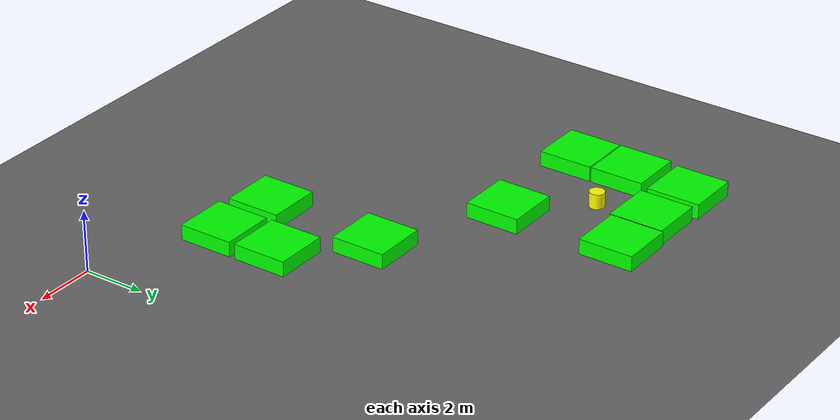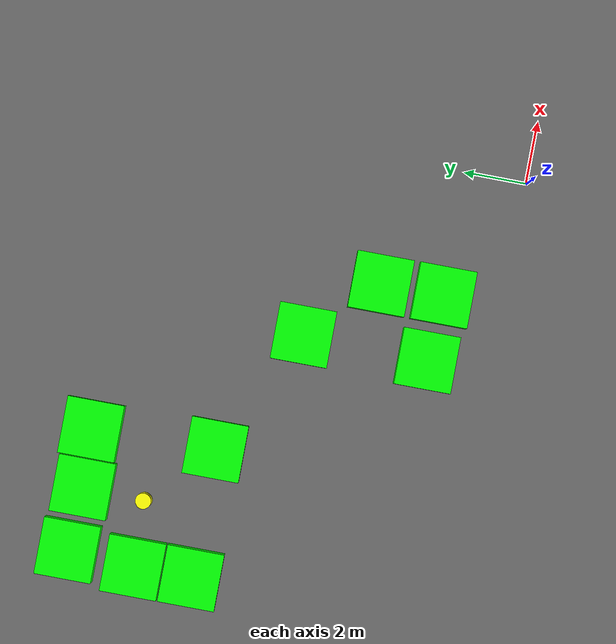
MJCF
<mujoco model="lvl5_corridor_obs10_dlong_depth3_seed51">
    <compiler angle="degree" coordinate="local" inertiafromgeom="true"/>
    <option integrator="RK4" timestep="0.01"/>

    <asset>
        <texture builtin="gradient" height="100" rgb1="0.6 0.8 1" rgb2="0 0 0" type="skybox" width="100"/>
        <texture name="floor_texture" type="2d" builtin="checker" width="100" height="100" rgb1="0 0 0" rgb2="0.8 0.8 0.8"/>
        <material name="MatPlane" reflectance="0.5" shininess="1" specular="1" texrepeat="10 10" texture="floor_texture"/>
    </asset>

    <!-- Excluding the contact between the agent and the goal, and the agent and the floor -->
    <contact>
        <exclude body1="agent" body2="goal"/>
        <exclude body1 = "agent" body2 = "floor"/>
    </contact>

    <extension>
        <plugin plugin = "mujoco.pid">
            <instance name = "pid1">
                <config key="kp" value="2"/>
                <config key="ki" value="0"/>
                <config key="kd" value="55"/>
            </instance>
        </plugin>
    </extension>

    <worldbody>
        <light cutoff="100" diffuse="1 1 1" dir="-0 0 -1.3" directional="true" exponent="1" pos="0 0 1.3" specular=".1 .1 .1"/>
        <body name="floor" pos="0 0 0">
            <geom name="floor_geom" type="plane" size="20 20 0.1" material="MatPlane"/>
        </body>

                <body name="goal" pos="0.0000 0.0000 0">
            <geom name="goal_geom" type="plane" size="0.5 0.5 1" pos="0 0 0" rgba="1 0 0 1"/>
        </body>

                <body name="agent" pos="-12.0000 10.0000 0.250">
            <joint name="j1" type="slide" axis ="1 0 0 "/>
            <joint name="j2" type="slide" axis ="0 1 0 "/>
            <geom name="agent_geom" type="cylinder" size="0.25 0.25 0.250" rgba="1 1 0 1"/>
        </body>

        <body name="obstacle1" pos="-13.9394 12.0413 0.250">  <geom name="obstacle1_geom" type="box" size="0.9000 0.9000 0.250" rgba="0 1 0 1"/></body>
        <body name="obstacle2" pos="-11.9253 11.9481 0.250">  <geom name="obstacle2_geom" type="box" size="0.9000 0.9000 0.250" rgba="0 1 0 1"/></body>
        <body name="obstacle3" pos="-10.0939 12.0184 0.250">  <geom name="obstacle3_geom" type="box" size="0.9000 0.9000 0.250" rgba="0 1 0 1"/></body>
        <body name="obstacle4" pos="-14.0929 9.9373 0.250">  <geom name="obstacle4_geom" type="box" size="0.9000 0.9000 0.250" rgba="0 1 0 1"/></body>
        <body name="obstacle5" pos="-14.0881 8.0961 0.250">  <geom name="obstacle5_geom" type="box" size="0.9000 0.9000 0.250" rgba="0 1 0 1"/></body>
        <body name="obstacle6" pos="-10.0053 8.0864 0.250">  <geom name="obstacle6_geom" type="box" size="0.9000 0.9000 0.250" rgba="0 1 0 1"/></body>
        <body name="obstacle7" pos="-5.9759 6.0388 0.250">  <geom name="obstacle7_geom" type="box" size="0.9000 0.9000 0.250" rgba="0 1 0 1"/></body>
        <body name="obstacle8" pos="-3.9539 3.9499 0.250">  <geom name="obstacle8_geom" type="box" size="0.9000 0.9000 0.250" rgba="0 1 0 1"/></body>
        <body name="obstacle9" pos="-6.0513 2.0861 0.250">  <geom name="obstacle9_geom" type="box" size="0.9000 0.9000 0.250" rgba="0 1 0 1"/></body>
        <body name="obstacle10" pos="-3.9506 1.9527 0.250">  <geom name="obstacle10_geom" type="box" size="0.9000 0.9000 0.250" rgba="0 1 0 1"/></body>

    </worldbody>

    <sensor>
<!-- SENSORS -->

        <distance name="dist1" geom1="agent_geom" geom2="obstacle1_geom" cutoff="1.5"/>
        <distance name="dist2" geom1="agent_geom" geom2="obstacle2_geom" cutoff="1.5"/>
        <distance name="dist3" geom1="agent_geom" geom2="obstacle3_geom" cutoff="1.5"/>
        <distance name="dist4" geom1="agent_geom" geom2="obstacle4_geom" cutoff="1.5"/>
        <distance name="dist5" geom1="agent_geom" geom2="obstacle5_geom" cutoff="1.5"/>
        <distance name="dist6" geom1="agent_geom" geom2="obstacle6_geom" cutoff="1.5"/>
        <distance name="dist7" geom1="agent_geom" geom2="obstacle7_geom" cutoff="1.5"/>
        <distance name="dist8" geom1="agent_geom" geom2="obstacle8_geom" cutoff="1.5"/>
        <distance name="dist9" geom1="agent_geom" geom2="obstacle9_geom" cutoff="1.5"/>
        <distance name="dist10" geom1="agent_geom" geom2="obstacle10_geom" cutoff="1.5"/>
</sensor>

    <actuator>
        <plugin joint="j1" plugin="mujoco.pid" instance="pid1" />
        <plugin joint="j2" plugin="mujoco.pid" instance="pid1"/>
    </actuator>
</mujoco>
